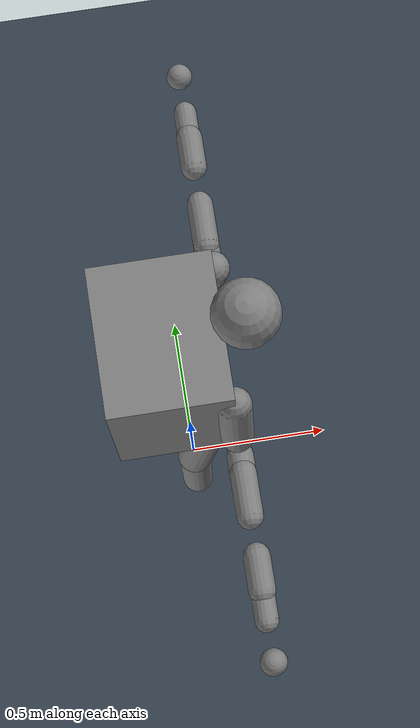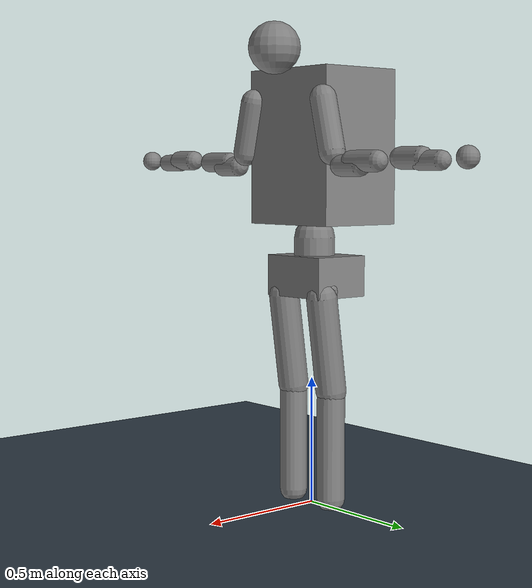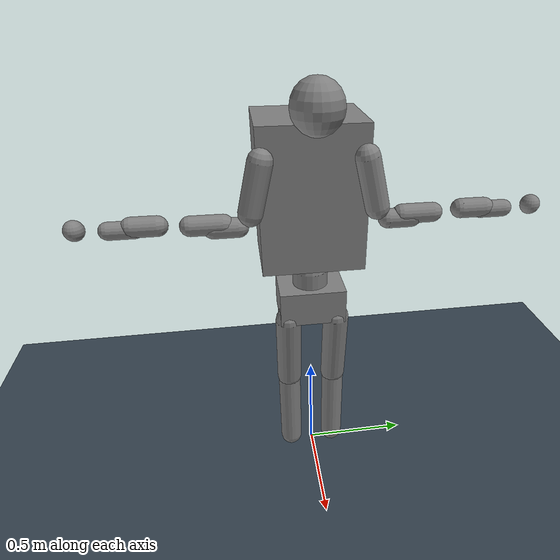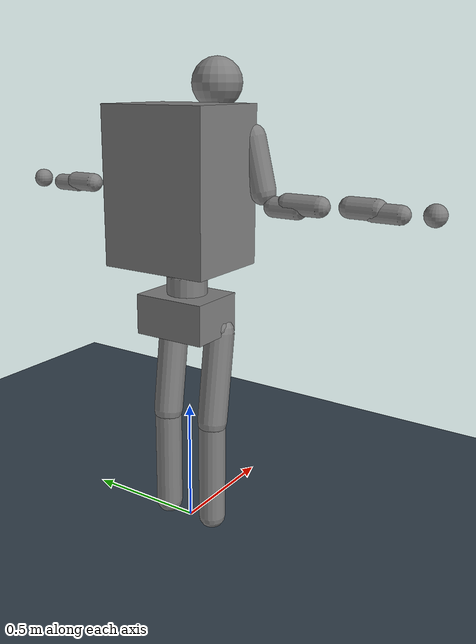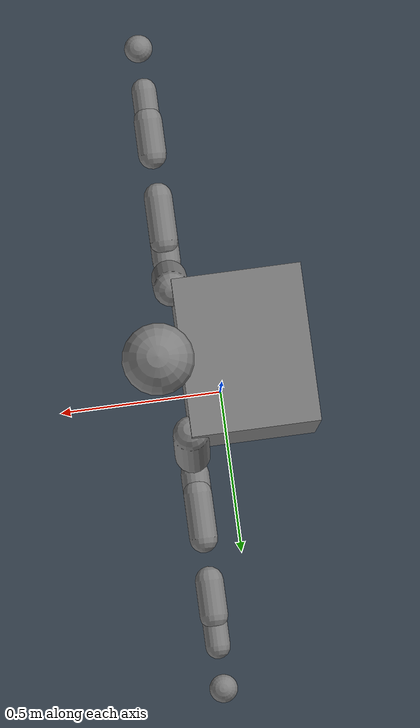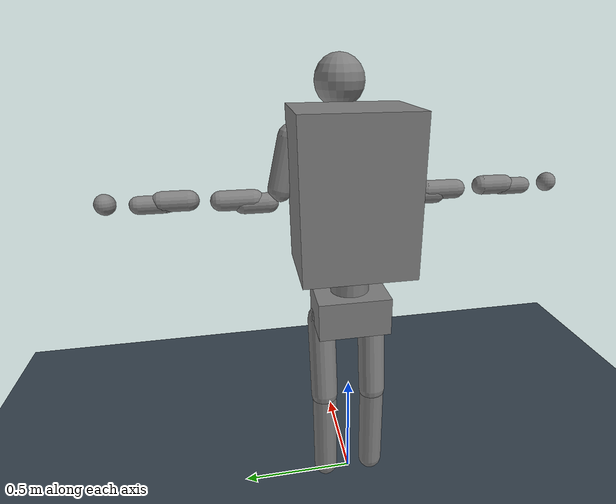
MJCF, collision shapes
<mujoco model="drc_atlas">
  <default>
    <!-- Visual-only geoms: no collision, group 1 for rendering -->
    <default class="visual">
      <geom contype="0" conaffinity="0" group="1" density="0"/>
    </default>
    <!-- Collision geoms: simple primitives with stable contact parameters -->
    <default class="collision">
      <geom group="2" rgba="0.5 0.5 0.5 0.3"
            friction="1.0 0.005 0.0001"
            solimp="0.95 0.99 0.001"
            solref="0.004 1.0"/>
    </default>
  </default>
  <compiler angle="radian" meshdir="../meshes"/>
  <option timestep="0.001" gravity="0 0 -9.81"/>

  <statistic center="0 0 1.0" extent="1.5"/>
  <visual>
    <headlight diffuse="0.6 0.6 0.6" ambient="0.1 0.1 0.1" specular="0.9 0.9 0.9"/>
    <rgba haze="0.15 0.25 0.35 1"/>
    <global azimuth="-140" elevation="-20"/>
  </visual>

  <asset>
    <texture type="skybox" builtin="gradient" rgb2="0.835 0.761 0.612" rgb1="0.639 0.722 0.8" width="512" height="512"/>
    <texture type="2d" name="groundplane" builtin="checker" mark="random"
             rgb1="0.25 0.3 0.35" rgb2="0.15 0.2 0.25"
             markrgb="0.6 0.7 0.8"
             width="512" height="512"/>
    <material name="groundplane" texture="groundplane" texuniform="true" texrepeat="2 2" reflectance="0.05"/>
    <mesh name="base_link" content_type="model/stl" file="base_link.STL"/>
    <mesh name="l_clav" content_type="model/stl" file="l_clav.stl"/>
    <mesh name="l_farm" content_type="model/stl" file="l_farm.stl"/>
    <mesh name="l_foot" content_type="model/stl" file="l_foot.stl"/>
    <mesh name="l_hand" content_type="model/stl" file="l_hand.stl"/>
    <mesh name="l_larm" content_type="model/stl" file="l_larm.stl"/>
    <mesh name="l_lglut" content_type="model/stl" file="l_lglut.stl"/>
    <mesh name="l_lleg" content_type="model/stl" file="l_lleg.stl"/>
    <mesh name="l_scap" content_type="model/stl" file="l_scap.stl"/>
    <mesh name="l_talus" content_type="model/stl" file="l_talus.stl"/>
    <mesh name="l_uarm" content_type="model/stl" file="l_uarm.stl"/>
    <mesh name="l_uglut" content_type="model/stl" file="l_uglut.stl"/>
    <mesh name="l_uleg" content_type="model/stl" file="l_uleg.stl"/>
    <mesh name="ltorso" content_type="model/stl" file="ltorso.stl"/>
    <mesh name="mtorso" content_type="model/stl" file="mtorso.stl"/>
    <mesh name="pelvis_mesh" content_type="model/stl" file="pelvis.stl"/>
    <mesh name="r_clav" content_type="model/stl" file="r_clav.stl"/>
    <mesh name="r_farm" content_type="model/stl" file="r_farm.stl"/>
    <mesh name="r_foot" content_type="model/stl" file="r_foot.stl"/>
    <mesh name="r_hand" content_type="model/stl" file="r_hand.stl"/>
    <mesh name="r_larm" content_type="model/stl" file="r_larm.stl"/>
    <mesh name="r_lglut" content_type="model/stl" file="r_lglut.stl"/>
    <mesh name="r_lleg" content_type="model/stl" file="r_lleg.stl"/>
    <mesh name="r_scap" content_type="model/stl" file="r_scap.stl"/>
    <mesh name="r_talus" content_type="model/stl" file="r_talus.stl"/>
    <mesh name="r_uarm" content_type="model/stl" file="r_uarm.stl"/>
    <mesh name="r_uglut" content_type="model/stl" file="r_uglut.stl"/>
    <mesh name="r_uleg" content_type="model/stl" file="r_uleg.stl"/>
    <mesh name="utorso" content_type="model/stl" file="utorso.stl"/>
    <mesh name="head_mesh" content_type="model/stl" file="head.stl"/>
  </asset>

  <worldbody>
    <light pos="1 0 3.5" dir="0 0 -1" directional="true"/>
    <geom name="floor" size="10 10 0.05" type="plane" material="groundplane"
          friction="1.0 0.005 0.0001"
          solimp="0.95 0.99 0.001"
          solref="0.004 1.0"/>

    <!-- Atlas robot - pelvis is the floating base body -->
    <body name="pelvis" pos="0 0 0.895">
      <freejoint name="root"/>
      <inertial pos="-0.0346 0.00 0.02" mass="17.882" diaginertia="0.126 0.099 0.117"/>
      <geom class="visual" type="mesh" mesh="pelvis_mesh"/>
      <geom class="collision" type="box" size="0.12 0.15 0.08" pos="-0.02 0 0.01"/>

      <!-- Torso chain -->
      <body name="ltorso" pos="-0.0125 0 0">
        <inertial pos="-0.0112984 -3.15366e-06 0.0746835" quat="0.997071 0.000128212 0.076485 -0.00012406" mass="2.409" diaginertia="0.003962 0.00341694 0.00169212"/>
        <joint name="back_bkz" pos="0 0 0" axis="0 0 1" range="-0.663225 0.663225" actuatorfrcrange="-106 106" damping="5.0"/>
        <geom class="visual" type="mesh" mesh="ltorso"/>
        <geom class="collision" type="capsule" size="0.08" fromto="0 0 0 0 0 0.16"/>
        <body name="mtorso" pos="0 0 0.162">
          <inertial pos="-0.00816266 -0.0131245 0.0305974" quat="0.108378 0.49314 0.746335 0.433648" mass="0.69" diaginertia="0.000536243 0.000487378 0.000358057"/>
          <joint name="back_bky" pos="0 0 0" axis="0 1 0" range="-0.219388 0.538783" actuatorfrcrange="-445 445" damping="5.0"/>
          <geom class="visual" type="mesh" mesh="mtorso"/>
          <geom class="collision" type="capsule" size="0.06" fromto="0 0 0 0 0 0.05"/>
          <body name="utorso" pos="0 0 0.05">
            <inertial pos="-0.0571559 4.12307e-05 0.306477" quat="0.945702 -0.00432926 -0.324953 0.00585631" mass="64.03" diaginertia="1.74 1.54023 1.06239"/>
            <joint name="back_bkx" pos="0 0 0" axis="1 0 0" range="-0.523599 0.523599" actuatorfrcrange="-300 300" damping="5.0"/>
            <geom class="visual" type="mesh" mesh="utorso"/>
            <geom class="collision" type="box" size="0.18 0.22 0.30" pos="-0.04 0 0.30"/>

            <!-- Left arm -->
            <body name="l_clav" pos="0.1406 0.2036 0.4776">
              <inertial pos="0 0.048 -0.084" quat="0.684588 -0.177029 0.177029 0.684588" mass="3.45" diaginertia="0.011217 0.011 0.00178301"/>
              <joint name="l_arm_shz" pos="0 0 0" axis="0 0 1" range="-1.5708 0.785398" actuatorfrcrange="-87 87" damping="5.0"/>
              <geom class="visual" pos="0 -0.044 -0.34" type="mesh" mesh="l_clav"/>
              <geom class="collision" type="capsule" size="0.05" fromto="0 0 0 0 0.05 -0.20"/>
              <body name="l_scap" pos="0 0.0981 -0.2511">
                <inertial pos="0 0 0" quat="0.5 0.5 0.5 0.5" mass="3.012" diaginertia="0.00583 0.00583 0.00319"/>
                <joint name="l_arm_shx" pos="0 0 0" axis="1 0 0" range="-1.5708 1.5708" actuatorfrcrange="-99 99" damping="5.0"/>
                <geom class="visual" type="mesh" mesh="l_scap"/>
                <geom class="collision" type="capsule" size="0.04" fromto="0 0 0 0 0.10 0"/>
                <body name="l_uarm" pos="0 0.187 0.016">
                  <inertial pos="0 -0.065 0" quat="0.707107 0.707107 0 0" mass="3.388" diaginertia="0.00656 0.00656 0.00358"/>
                  <joint name="l_arm_ely" pos="0 0 0" axis="0 1 0" range="0 3.14159" actuatorfrcrange="-63 63" damping="5.0"/>
                  <geom class="visual" type="mesh" mesh="l_uarm"/>
                  <geom class="collision" type="capsule" size="0.04" fromto="0 0 0 0 -0.13 0"/>
                  <body name="l_larm" pos="0 0.119 0.0092">
                    <inertial pos="0 0 0" quat="0.5 0.5 0.5 0.5" mass="2.509" diaginertia="0.00446 0.00446 0.00265"/>
                    <joint name="l_arm_elx" pos="0 0 0" axis="1 0 0" range="0 2.35619" actuatorfrcrange="-112 112" damping="5.0"/>
                    <geom class="visual" type="mesh" mesh="l_larm"/>
                    <geom class="collision" type="capsule" size="0.04" fromto="0 0 0 0 0.10 0"/>
                    <body name="l_farm" pos="0 0.187 -0.0092">
                      <inertial pos="0 -0.065 0" quat="0.707107 0.707107 0 0" mass="3.388" diaginertia="0.00656 0.00656 0.00358"/>
                      <joint name="l_arm_wry" pos="0 0 0" axis="0 1 0" range="0 3.14159" actuatorfrcrange="-25 25" damping="5.0"/>
                      <geom class="visual" type="mesh" mesh="l_farm"/>
                      <geom class="collision" type="capsule" size="0.035" fromto="0 0 0 0 -0.10 0"/>
                      <body name="l_hand" pos="0 0.119 0.0092">
                        <inertial pos="0 0 0" quat="0.5 0.5 0.5 0.5" mass="2.509" diaginertia="0.00446 0.00446 0.00265"/>
                        <joint name="l_arm_wrx" pos="0 0 0" axis="1 0 0" range="-1.1781 1.1781" actuatorfrcrange="-25 25" damping="5.0"/>
                        <geom class="visual" type="mesh" mesh="l_hand"/>
                        <geom class="collision" type="sphere" size="0.04"/>
                      </body>
                    </body>
                  </body>
                </body>
              </body>
            </body>

            <!-- Head -->
            <body name="head" pos="0.2546 0 0.6215">
              <inertial pos="-0.075493 3.3383e-05 0.02774" quat="0.945485 -0.000797655 0.325663 -0.000518426" mass="1.4199" diaginertia="0.00466672 0.0041178 0.00282637"/>
              <joint name="neck_ry" pos="0 0 0" axis="0 1 0" range="-0.602139 1.14319" actuatorfrcrange="-5 5" damping="5.0"/>
              <geom class="visual" pos="-0.0446 0 0.088" quat="0.707107 0 0 0.707106" type="mesh" rgba="0.9098 0.44314 0.031373 1" mesh="base_link"/>
              <geom class="collision" type="sphere" size="0.10" pos="-0.05 0 0.05"/>
            </body>

            <!-- Right arm -->
            <body name="r_clav" pos="0.1406 -0.2036 0.4776">
              <inertial pos="0 -0.048 -0.084" quat="0.684588 0.177029 -0.177029 0.684588" mass="3.45" diaginertia="0.011217 0.011 0.00178301"/>
              <joint name="r_arm_shz" pos="0 0 0" axis="0 0 1" range="-0.785398 1.5708" actuatorfrcrange="-87 87" damping="5.0"/>
              <geom class="visual" pos="0 0.044 -0.34" type="mesh" mesh="r_clav"/>
              <geom class="collision" type="capsule" size="0.05" fromto="0 0 0 0 -0.05 -0.20"/>
              <body name="r_scap" pos="0 -0.0981 -0.2511">
                <inertial pos="0 0 0" quat="0.5 0.5 0.5 0.5" mass="3.012" diaginertia="0.00583 0.00583 0.00319"/>
                <joint name="r_arm_shx" pos="0 0 0" axis="1 0 0" range="-1.5708 1.5708" actuatorfrcrange="-99 99" damping="5.0"/>
                <geom class="visual" type="mesh" mesh="r_scap"/>
                <geom class="collision" type="capsule" size="0.04" fromto="0 0 0 0 -0.10 0"/>
                <body name="r_uarm" pos="0 -0.187 0.016">
                  <inertial pos="0 0.065 0" quat="0.707107 0.707107 0 0" mass="3.388" diaginertia="0.00656 0.00656 0.00358"/>
                  <joint name="r_arm_ely" pos="0 0 0" axis="0 1 0" range="0 3.14159" actuatorfrcrange="-63 63" damping="5.0"/>
                  <geom class="visual" type="mesh" mesh="r_uarm"/>
                  <geom class="collision" type="capsule" size="0.04" fromto="0 0 0 0 0.13 0"/>
                  <body name="r_larm" pos="0 -0.119 0.0092">
                    <inertial pos="0 0 0" quat="0.5 0.5 0.5 0.5" mass="2.509" diaginertia="0.00446 0.00446 0.00265"/>
                    <joint name="r_arm_elx" pos="0 0 0" axis="1 0 0" range="-2.35619 0" actuatorfrcrange="-112 112" damping="5.0"/>
                    <geom class="visual" type="mesh" mesh="r_larm"/>
                    <geom class="collision" type="capsule" size="0.04" fromto="0 0 0 0 -0.10 0"/>
                    <body name="r_farm" pos="0 -0.187 -0.0092">
                      <inertial pos="0 0.065 0" quat="0.707107 0.707107 0 0" mass="3.388" diaginertia="0.00656 0.00656 0.00358"/>
                      <joint name="r_arm_wry" pos="0 0 0" axis="0 1 0" range="0 3.14159" actuatorfrcrange="-25 25" damping="5.0"/>
                      <geom class="visual" type="mesh" mesh="r_farm"/>
                      <geom class="collision" type="capsule" size="0.035" fromto="0 0 0 0 0.10 0"/>
                      <body name="r_hand" pos="0 -0.119 0.0092">
                        <inertial pos="0 0 0" quat="0.5 0.5 0.5 0.5" mass="2.509" diaginertia="0.00446 0.00446 0.00265"/>
                        <joint name="r_arm_wrx" pos="0 0 0" axis="1 0 0" range="-1.1781 1.1781" actuatorfrcrange="-25 25" damping="5.0"/>
                        <geom class="visual" type="mesh" mesh="r_hand"/>
                        <geom class="collision" type="sphere" size="0.04"/>
                      </body>
                    </body>
                  </body>
                </body>
              </body>
            </body>
          </body>
        </body>
      </body>

      <!-- Left leg -->
      <body name="l_uglut" pos="0 0.089 0">
        <inertial pos="0.00529262 -0.00344732 0.00313046" quat="0.999122 -7.72169e-05 0.0419028 -0.000305187" mass="0.648" diaginertia="0.000745109 0.000688179 0.000410071"/>
        <joint name="l_leg_hpz" pos="0 0 0" axis="0 0 1" range="-0.174358 0.786794" actuatorfrcrange="-275 275" damping="5.0"/>
        <geom class="visual" type="mesh" mesh="l_uglut"/>
        <geom class="collision" type="capsule" size="0.05" fromto="0 0 0 0.01 -0.01 -0.03"/>
        <body name="l_lglut">
          <inertial pos="0.0133341 0.0170484 -0.0312052" quat="0.353465 0.600383 0.388609 0.602981" mass="0.866" diaginertia="0.00133867 0.000995812 0.000690275"/>
          <joint name="l_leg_hpx" pos="0 0 0" axis="1 0 0" range="-0.523599 0.523599" actuatorfrcrange="-530 530" damping="5.0"/>
          <geom class="visual" pos="0 0.005 -0.01" type="mesh" mesh="l_lglut"/>
          <geom class="collision" type="capsule" size="0.05" fromto="0 0 0 0.03 0.02 -0.05"/>
          <body name="l_uleg" pos="0.05 0.0225 -0.066">
            <inertial pos="0 0 -0.21" mass="9.209" diaginertia="0.09 0.09 0.02"/>
            <joint name="l_leg_hpy" pos="0 0 0" axis="0 1 0" range="-1.61234 0.65764" actuatorfrcrange="-840 840" damping="5.0"/>
            <geom class="visual" pos="-0.002 -0.015 0.006" type="mesh" mesh="l_uleg"/>
            <geom class="collision" type="capsule" size="0.06" fromto="0 0 0 -0.05 0 -0.37"/>
            <body name="l_lleg" pos="-0.05 0 -0.374">
              <inertial pos="0.001 0 -0.187" quat="0.999751 0 0.0223266 0" mass="5.479" diaginertia="0.0771341 0.076 0.00986594"/>
              <joint name="l_leg_kny" pos="0 0 0" axis="0 1 0" range="0 2.35637" actuatorfrcrange="-890 890" damping="5.0"/>
              <geom class="visual" pos="0 0 -0.002" type="mesh" mesh="l_lleg"/>
              <geom class="collision" type="capsule" size="0.055" fromto="0 0 0 0 0 -0.42"/>
              <body name="l_talus" pos="0 0 -0.422">
                <inertial pos="0 0 0" quat="0.5 0.5 -0.5 0.5" mass="0.125" diaginertia="1.30101e-05 1.01674e-05 8.42775e-06"/>
                <joint name="l_leg_aky" pos="0 0 0" axis="0 1 0" range="-1 0.7" actuatorfrcrange="-740 740" damping="5.0"/>
                <geom class="visual" pos="0.014 0 0.008" type="mesh" mesh="l_talus"/>
                <body name="l_foot">
                  <inertial pos="0.027 0 -0.067" quat="0 0.707107 0 0.707107" mass="2.05" diaginertia="0.008 0.007 0.002"/>
                  <joint name="l_leg_akx" pos="0 0 0" axis="1 0 0" range="-0.8 0.8" actuatorfrcrange="-360 360" damping="5.0"/>
                  <geom class="visual" pos="-0.008 0.002 0.024" type="mesh" mesh="l_foot"/>
                  <!-- Foot sole contact geoms — 4 corner spheres only (no box) for clean point contacts -->
                  <geom class="collision" type="sphere" size="0.012" pos="-0.08 0.055 -0.07"/>
                  <geom class="collision" type="sphere" size="0.012" pos="-0.08 -0.055 -0.07"/>
                  <geom class="collision" type="sphere" size="0.012" pos="0.16 0.055 -0.07"/>
                  <geom class="collision" type="sphere" size="0.012" pos="0.16 -0.055 -0.07"/>
                </body>
              </body>
            </body>
          </body>
        </body>
      </body>

      <!-- Right leg -->
      <body name="r_uglut" pos="0 -0.089 0">
        <inertial pos="0.00529262 0.00344732 0.00313046" quat="0.999122 7.72169e-05 0.0419028 0.000305187" mass="0.648" diaginertia="0.000745109 0.000688179 0.000410071"/>
        <joint name="r_leg_hpz" pos="0 0 0" axis="0 0 1" range="-0.786794 0.174358" actuatorfrcrange="-275 275" damping="5.0"/>
        <geom class="visual" type="mesh" mesh="r_uglut"/>
        <geom class="collision" type="capsule" size="0.05" fromto="0 0 0 0.01 0.01 -0.03"/>
        <body name="r_lglut">
          <inertial pos="0.0133341 -0.0170484 -0.0312052" quat="0.602981 0.388609 0.600383 0.353465" mass="0.866" diaginertia="0.00133867 0.000995812 0.000690275"/>
          <joint name="r_leg_hpx" pos="0 0 0" axis="1 0 0" range="-0.523599 0.523599" actuatorfrcrange="-530 530" damping="5.0"/>
          <geom class="visual" pos="0.01 -0.005 0" type="mesh" mesh="r_lglut"/>
          <geom class="collision" type="capsule" size="0.05" fromto="0 0 0 0.03 -0.02 -0.05"/>
          <body name="r_uleg" pos="0.05 -0.0225 -0.066">
            <inertial pos="0 0 -0.21" mass="9.209" diaginertia="0.09 0.09 0.02"/>
            <joint name="r_leg_hpy" pos="0 0 0" axis="0 1 0" range="-1.61234 0.65764" actuatorfrcrange="-840 840" damping="5.0"/>
            <geom class="visual" pos="-0.002 0.015 0.006" type="mesh" mesh="r_uleg"/>
            <geom class="collision" type="capsule" size="0.06" fromto="0 0 0 -0.05 0 -0.37"/>
            <body name="r_lleg" pos="-0.05 0 -0.374">
              <inertial pos="0.001 0 -0.187" quat="0.999751 0 0.0223266 0" mass="5.479" diaginertia="0.0771341 0.076 0.00986594"/>
              <joint name="r_leg_kny" pos="0 0 0" axis="0 1 0" range="0 2.35637" actuatorfrcrange="-890 890" damping="5.0"/>
              <geom class="visual" pos="0 0 -0.002" type="mesh" mesh="r_lleg"/>
              <geom class="collision" type="capsule" size="0.055" fromto="0 0 0 0 0 -0.42"/>
              <body name="r_talus" pos="0 0 -0.422">
                <inertial pos="0 0 0" quat="0.5 0.5 -0.5 0.5" mass="0.125" diaginertia="1.30101e-05 1.01674e-05 8.42775e-06"/>
                <joint name="r_leg_aky" pos="0 0 0" axis="0 1 0" range="-1 0.7" actuatorfrcrange="-740 740" damping="5.0"/>
                <geom class="visual" pos="0.014 0 0.008" type="mesh" mesh="r_talus"/>
                <body name="r_foot">
                  <inertial pos="0.027 0 -0.067" quat="0 0.707107 0 0.707107" mass="2.05" diaginertia="0.008 0.007 0.002"/>
                  <joint name="r_leg_akx" pos="0 0 0" axis="1 0 0" range="-0.8 0.8" actuatorfrcrange="-360 360" damping="5.0"/>
                  <geom class="visual" pos="-0.008 -0.002 0.024" type="mesh" mesh="r_foot"/>
                  <!-- Foot sole contact geoms — 4 corner spheres only (no box) for clean point contacts -->
                  <geom class="collision" type="sphere" size="0.012" pos="-0.08 0.055 -0.07"/>
                  <geom class="collision" type="sphere" size="0.012" pos="-0.08 -0.055 -0.07"/>
                  <geom class="collision" type="sphere" size="0.012" pos="0.16 0.055 -0.07"/>
                  <geom class="collision" type="sphere" size="0.012" pos="0.16 -0.055 -0.07"/>
                </body>
              </body>
            </body>
          </body>
        </body>
      </body>
    </body>
  </worldbody>

  <!-- Self-collision exclusion for adjacent links -->
  <contact>
    <!-- Torso chain -->
    <exclude body1="pelvis" body2="ltorso"/>
    <exclude body1="ltorso" body2="mtorso"/>
    <exclude body1="mtorso" body2="utorso"/>
    <!-- Left arm chain -->
    <exclude body1="utorso" body2="l_clav"/>
    <exclude body1="l_clav" body2="l_scap"/>
    <exclude body1="l_scap" body2="l_uarm"/>
    <exclude body1="l_uarm" body2="l_larm"/>
    <exclude body1="l_larm" body2="l_farm"/>
    <exclude body1="l_farm" body2="l_hand"/>
    <!-- Right arm chain -->
    <exclude body1="utorso" body2="r_clav"/>
    <exclude body1="r_clav" body2="r_scap"/>
    <exclude body1="r_scap" body2="r_uarm"/>
    <exclude body1="r_uarm" body2="r_larm"/>
    <exclude body1="r_larm" body2="r_farm"/>
    <exclude body1="r_farm" body2="r_hand"/>
    <!-- Head -->
    <exclude body1="utorso" body2="head"/>
    <!-- Left leg chain -->
    <exclude body1="pelvis" body2="l_uglut"/>
    <exclude body1="pelvis" body2="l_lglut"/>
    <exclude body1="pelvis" body2="l_uleg"/>
    <exclude body1="ltorso" body2="l_uglut"/>
    <exclude body1="ltorso" body2="l_lglut"/>
    <exclude body1="l_uglut" body2="l_lglut"/>
    <exclude body1="l_uglut" body2="l_uleg"/>
    <exclude body1="l_lglut" body2="l_uleg"/>
    <exclude body1="l_uleg" body2="l_lleg"/>
    <exclude body1="l_lleg" body2="l_talus"/>
    <exclude body1="l_talus" body2="l_foot"/>
    <!-- Right leg chain -->
    <exclude body1="pelvis" body2="r_uglut"/>
    <exclude body1="pelvis" body2="r_lglut"/>
    <exclude body1="pelvis" body2="r_uleg"/>
    <exclude body1="ltorso" body2="r_uglut"/>
    <exclude body1="ltorso" body2="r_lglut"/>
    <exclude body1="r_uglut" body2="r_lglut"/>
    <exclude body1="r_uglut" body2="r_uleg"/>
    <exclude body1="r_lglut" body2="r_uleg"/>
    <exclude body1="r_uleg" body2="r_lleg"/>
    <exclude body1="r_lleg" body2="r_talus"/>
    <exclude body1="r_talus" body2="r_foot"/>
    <!-- Torso overlaps -->
    <exclude body1="ltorso" body2="utorso"/>
    <exclude body1="pelvis" body2="mtorso"/>
  </contact>

  <!-- Actuators for all joints -->
  <actuator>
    <motor name="back_bkz_motor" joint="back_bkz"/>
    <motor name="back_bky_motor" joint="back_bky"/>
    <motor name="back_bkx_motor" joint="back_bkx"/>
    <motor name="l_arm_shz_motor" joint="l_arm_shz"/>
    <motor name="l_arm_shx_motor" joint="l_arm_shx"/>
    <motor name="l_arm_ely_motor" joint="l_arm_ely"/>
    <motor name="l_arm_elx_motor" joint="l_arm_elx"/>
    <motor name="l_arm_wry_motor" joint="l_arm_wry"/>
    <motor name="l_arm_wrx_motor" joint="l_arm_wrx"/>
    <motor name="neck_ry_motor" joint="neck_ry"/>
    <motor name="r_arm_shz_motor" joint="r_arm_shz"/>
    <motor name="r_arm_shx_motor" joint="r_arm_shx"/>
    <motor name="r_arm_ely_motor" joint="r_arm_ely"/>
    <motor name="r_arm_elx_motor" joint="r_arm_elx"/>
    <motor name="r_arm_wry_motor" joint="r_arm_wry"/>
    <motor name="r_arm_wrx_motor" joint="r_arm_wrx"/>
    <motor name="l_leg_hpz_motor" joint="l_leg_hpz"/>
    <motor name="l_leg_hpx_motor" joint="l_leg_hpx"/>
    <motor name="l_leg_hpy_motor" joint="l_leg_hpy"/>
    <motor name="l_leg_kny_motor" joint="l_leg_kny"/>
    <motor name="l_leg_aky_motor" joint="l_leg_aky"/>
    <motor name="l_leg_akx_motor" joint="l_leg_akx"/>
    <motor name="r_leg_hpz_motor" joint="r_leg_hpz"/>
    <motor name="r_leg_hpx_motor" joint="r_leg_hpx"/>
    <motor name="r_leg_hpy_motor" joint="r_leg_hpy"/>
    <motor name="r_leg_kny_motor" joint="r_leg_kny"/>
    <motor name="r_leg_aky_motor" joint="r_leg_aky"/>
    <motor name="r_leg_akx_motor" joint="r_leg_akx"/>
  </actuator>
  <equality>
    <weld name="gantry" body1="world" body2="pelvis" relpose="0 0 1 1 0 0 0" active="false"/>
  </equality>
</mujoco>
